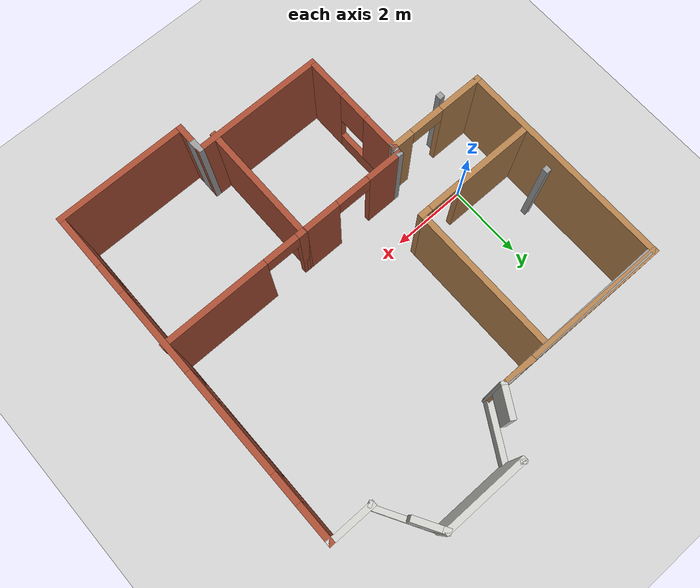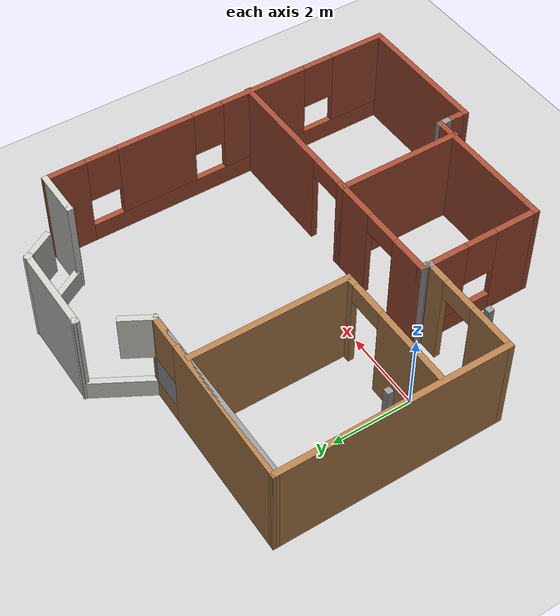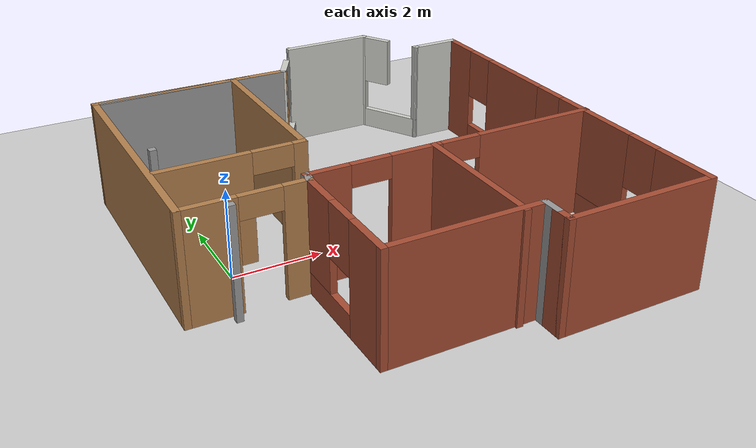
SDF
<sdf version="1.6">
 <world name="default">
  <light name="sun" type="directional">
   <pose>0 0 10 0 -0 0</pose>
   <diffuse>0.8 0.8 0.8 1</diffuse>
   <specular>0.1 0.1 0.1 1</specular>
   <attenuation>
    <range>1000</range>
    <constant>0.9</constant>
    <linear>0.01</linear>
    <quadratic>0.001</quadratic>
   </attenuation>
   <direction>-0.5 0.5 -1</direction>
  </light>
  <model name="ground_plane">
   <static>1</static>
   <link name="link">
    <collision name="collision">
     <geometry><plane><normal>0 0 1</normal><size>100 100</size></plane></geometry>
     <surface><friction><ode><mu>100</mu><mu2>50</mu2></ode></friction></surface>
    </collision>
    <visual name="visual">
     <cast_shadows>0</cast_shadows>
     <geometry><plane><normal>0 0 1</normal><size>100 100</size></plane></geometry>
     <material>
      <script><uri>file://media/materials/scripts/gazebo.material</uri><name>Gazebo/Grey</name></script>
     </material>
    </visual>
   </link>
  </model>
  <gravity>0 0 -9.8</gravity>
  <magnetic_field>6e-06 2.3e-05 -4.2e-05</magnetic_field>
  <atmosphere type="adiabatic"/>
  <physics name="default_physics" default="0" type="ode">
   <max_step_size>0.001</max_step_size>
   <real_time_factor>1</real_time_factor>
   <real_time_update_rate>1000</real_time_update_rate>
  </physics>
  <scene><ambient>0.4 0.4 0.4 1</ambient><background>0.7 0.7 0.7 1</background><shadows>1</shadows></scene>
  <spherical_coordinates>
   <surface_model>EARTH_WGS84</surface_model>
   <latitude_deg>0</latitude_deg>
   <longitude_deg>0</longitude_deg>
   <elevation>0</elevation>
   <heading_deg>0</heading_deg>
  </spherical_coordinates>
  <model name="map">
   <pose>3.29286 0.467569 0 0 -0 0</pose>
   <link name="Wall_16">
    <collision name="Wall_16_Collision">
     <geometry><box><size>0.15 0.15 2.5</size></box></geometry>
     <pose>0 0 1.25 0 -0 0</pose>
    </collision>
    <visual name="Wall_16_Visual">
     <pose>0 0 1.25 0 -0 0</pose>
     <geometry><box><size>0.15 0.15 2.5</size></box></geometry>
     <material>
      <script><uri>file://media/materials/scripts/gazebo.material</uri><name>Gazebo/Grey</name></script>
      <ambient>1 1 1 1</ambient>
     </material>
    </visual>
    <pose>-3.71682 -1.95121 0 0 -0 0</pose>
   </link>
   <link name="Wall_28">
    <collision name="Wall_28_Collision">
     <geometry><box><size>0.15 0.15 2.5</size></box></geometry>
     <pose>0 0 1.25 0 -0 0</pose>
    </collision>
    <visual name="Wall_28_Visual">
     <pose>0 0 1.25 0 -0 0</pose>
     <geometry><box><size>0.15 0.15 2.5</size></box></geometry>
     <material>
      <script><uri>file://media/materials/scripts/gazebo.material</uri><name>Gazebo/Grey</name></script>
      <ambient>1 1 1 1</ambient>
     </material>
    </visual>
    <pose>-4.25919 0.980729 0 0 -0 0</pose>
   </link>
   <link name="Wall_32">
    <collision name="Wall_32_Collision">
     <geometry><box><size>4.5 0.15 2.5</size></box></geometry>
     <pose>0 0 1.25 0 -0 0</pose>
    </collision>
    <visual name="Wall_32_Visual">
     <pose>0 0 1.25 0 -0 0</pose>
     <geometry><box><size>4.5 0.15 2.5</size></box></geometry>
     <material>
      <script><uri>file://media/materials/scripts/gazebo.material</uri><name>Gazebo/Grey</name></script>
      <ambient>1 1 1 1</ambient>
     </material>
    </visual>
    <pose>-2.33753 3.84345 0 0 -0 0</pose>
   </link>
   <link name="Wall_33">
    <pose>0.237473 4.53627 0 0 -0 1.0472</pose>
    <visual name="Wall_33_Visual_0">
     <pose>-0.830927 0 1.25 0 -0 0</pose>
     <geometry><box><size>0.088146 0.15 2.5</size></box></geometry>
     <material>
      <script><uri>file://media/materials/scripts/gazebo.material</uri><name>Gazebo/CeilingTiled</name></script>
      <ambient>1 1 1 1</ambient>
     </material>
    </visual>
    <collision name="Wall_33_Collision_0">
     <geometry><box><size>0.088146 0.15 2.5</size></box></geometry>
     <pose>-0.830927 0 1.25 0 -0 0</pose>
    </collision>
    <visual name="Wall_33_Visual_1">
     <pose>0.044073 0 0.25 0 -0 0</pose>
     <geometry><box><size>1.66185 0.15 0.5</size></box></geometry>
     <material>
      <script><uri>file://media/materials/scripts/gazebo.material</uri><name>Gazebo/CeilingTiled</name></script>
      <ambient>1 1 1 1</ambient>
     </material>
    </visual>
    <collision name="Wall_33_Collision_1">
     <geometry><box><size>1.66185 0.15 0.5</size></box></geometry>
     <pose>0.044073 0 0.25 0 -0 0</pose>
    </collision>
    <visual name="Wall_33_Visual_2">
     <pose>0.822657 0 1.5 0 -0 0</pose>
     <geometry><box><size>0.104687 0.15 2</size></box></geometry>
     <material>
      <script><uri>file://media/materials/scripts/gazebo.material</uri><name>Gazebo/CeilingTiled</name></script>
      <ambient>1 1 1 1</ambient>
     </material>
    </visual>
    <collision name="Wall_33_Collision_2">
     <geometry><box><size>0.104687 0.15 2</size></box></geometry>
     <pose>0.822657 0 1.5 0 -0 0</pose>
    </collision>
    <visual name="Wall_33_Visual_3">
     <pose>-0.408271 0 1.9 0 -0 0</pose>
     <geometry><box><size>0.757168 0.15 1.2</size></box></geometry>
     <material>
      <script><uri>file://media/materials/scripts/gazebo.material</uri><name>Gazebo/CeilingTiled</name></script>
      <ambient>1 1 1 1</ambient>
     </material>
    </visual>
    <collision name="Wall_33_Collision_3">
     <geometry><box><size>0.757168 0.15 1.2</size></box></geometry>
     <pose>-0.408271 0 1.9 0 -0 0</pose>
    </collision>
   </link>
   <link name="Wall_34">
    <collision name="Wall_34_Collision">
     <geometry><box><size>2.25 0.15 2.5</size></box></geometry>
     <pose>0 0 1.25 0 -0 0</pose>
    </collision>
    <visual name="Wall_34_Visual">
     <pose>0 0 1.25 0 -0 0</pose>
     <geometry><box><size>2.25 0.15 2.5</size></box></geometry>
     <material>
      <script><uri>file://media/materials/scripts/gazebo.material</uri><name>Gazebo/CeilingTiled</name></script>
      <ambient>1 1 1 1</ambient>
     </material>
    </visual>
    <pose>1.68747 5.2291 0 0 -0 0</pose>
   </link>
   <link name="Wall_35">
    <pose>3.13747 4.53627 0 0 0 -1.0472</pose>
    <visual name="Wall_35_Visual_0">
     <pose>-0.786697 0 1.25 0 -0 0</pose>
     <geometry><box><size>0.176605 0.15 2.5</size></box></geometry>
     <material>
      <script><uri>file://media/materials/scripts/gazebo.material</uri><name>Gazebo/CeilingTiled</name></script>
      <ambient>1 1 1 1</ambient>
     </material>
    </visual>
    <collision name="Wall_35_Collision_0">
     <geometry><box><size>0.176605 0.15 2.5</size></box></geometry>
     <pose>-0.786697 0 1.25 0 -0 0</pose>
    </collision>
    <visual name="Wall_35_Visual_1">
     <pose>0.088303 0 0.25 0 -0 0</pose>
     <geometry><box><size>1.5734 0.15 0.5</size></box></geometry>
     <material>
      <script><uri>file://media/materials/scripts/gazebo.material</uri><name>Gazebo/CeilingTiled</name></script>
      <ambient>1 1 1 1</ambient>
     </material>
    </visual>
    <collision name="Wall_35_Collision_1">
     <geometry><box><size>1.5734 0.15 0.5</size></box></geometry>
     <pose>0.088303 0 0.25 0 -0 0</pose>
    </collision>
    <visual name="Wall_35_Visual_2">
     <pose>0.832035 0 1.5 0 -0 0</pose>
     <geometry><box><size>0.085931 0.15 2</size></box></geometry>
     <material>
      <script><uri>file://media/materials/scripts/gazebo.material</uri><name>Gazebo/CeilingTiled</name></script>
      <ambient>1 1 1 1</ambient>
     </material>
    </visual>
    <collision name="Wall_35_Collision_2">
     <geometry><box><size>0.085931 0.15 2</size></box></geometry>
     <pose>0.832035 0 1.5 0 -0 0</pose>
    </collision>
    <visual name="Wall_35_Visual_3">
     <pose>-0.354663 0 1.9 0 -0 0</pose>
     <geometry><box><size>0.687464 0.15 1.2</size></box></geometry>
     <material>
      <script><uri>file://media/materials/scripts/gazebo.material</uri><name>Gazebo/CeilingTiled</name></script>
      <ambient>1 1 1 1</ambient>
     </material>
    </visual>
    <collision name="Wall_35_Collision_3">
     <geometry><box><size>0.687464 0.15 1.2</size></box></geometry>
     <pose>-0.354663 0 1.9 0 -0 0</pose>
    </collision>
   </link>
   <link name="Wall_36">
    <collision name="Wall_36_Collision">
     <geometry><box><size>1.25 0.15 2.5</size></box></geometry>
     <pose>0 0 1.25 0 -0 0</pose>
    </collision>
    <visual name="Wall_36_Visual">
     <pose>0 0 1.25 0 -0 0</pose>
     <geometry><box><size>1.25 0.15 2.5</size></box></geometry>
     <material>
      <script><uri>file://media/materials/scripts/gazebo.material</uri><name>Gazebo/CeilingTiled</name></script>
      <ambient>1 1 1 1</ambient>
     </material>
    </visual>
    <pose>4.08747 3.84345 0 0 -0 0</pose>
   </link>
   <link name="Wall_37">
    <pose>4.63747 -0.706546 0 0 0 -1.5708</pose>
    <visual name="Wall_37_Visual_0">
     <pose>-4.09363 0 1.25 0 -0 0</pose>
     <geometry><box><size>1.06275 0.15 2.5</size></box></geometry>
     <material>
      <script><uri>file://media/materials/scripts/gazebo.material</uri><name>Gazebo/Bricks</name></script>
      <ambient>1 1 1 1</ambient>
     </material>
    </visual>
    <collision name="Wall_37_Collision_0">
     <geometry><box><size>1.06275 0.15 2.5</size></box></geometry>
     <pose>-4.09363 0 1.25 0 -0 0</pose>
    </collision>
    <visual name="Wall_37_Visual_1">
     <pose>0.531375 0 0.25 0 -0 0</pose>
     <geometry><box><size>8.18725 0.15 0.5</size></box></geometry>
     <material>
      <script><uri>file://media/materials/scripts/gazebo.material</uri><name>Gazebo/Bricks</name></script>
      <ambient>1 1 1 1</ambient>
     </material>
    </visual>
    <collision name="Wall_37_Collision_1">
     <geometry><box><size>8.18725 0.15 0.5</size></box></geometry>
     <pose>0.531375 0 0.25 0 -0 0</pose>
    </collision>
    <visual name="Wall_37_Visual_2">
     <pose>-1.76706 0 1.5 0 -0 0</pose>
     <geometry><box><size>1.99038 0.15 2</size></box></geometry>
     <material>
      <script><uri>file://media/materials/scripts/gazebo.material</uri><name>Gazebo/Bricks</name></script>
      <ambient>1 1 1 1</ambient>
     </material>
    </visual>
    <collision name="Wall_37_Collision_2">
     <geometry><box><size>1.99038 0.15 2</size></box></geometry>
     <pose>-1.76706 0 1.5 0 -0 0</pose>
    </collision>
    <visual name="Wall_37_Visual_3">
     <pose>1.17552 0 1.5 0 -0 0</pose>
     <geometry><box><size>2.29479 0.15 2</size></box></geometry>
     <material>
      <script><uri>file://media/materials/scripts/gazebo.material</uri><name>Gazebo/Bricks</name></script>
      <ambient>1 1 1 1</ambient>
     </material>
    </visual>
    <collision name="Wall_37_Collision_3">
     <geometry><box><size>2.29479 0.15 2</size></box></geometry>
     <pose>1.17552 0 1.5 0 -0 0</pose>
    </collision>
    <visual name="Wall_37_Visual_4">
     <pose>3.87396 0 1.5 0 -0 0</pose>
     <geometry><box><size>1.50208 0.15 2</size></box></geometry>
     <material>
      <script><uri>file://media/materials/scripts/gazebo.material</uri><name>Gazebo/Bricks</name></script>
      <ambient>1 1 1 1</ambient>
     </material>
    </visual>
    <collision name="Wall_37_Collision_4">
     <geometry><box><size>1.50208 0.15 2</size></box></geometry>
     <pose>3.87396 0 1.5 0 -0 0</pose>
    </collision>
    <visual name="Wall_37_Visual_5">
     <pose>-3.16225 0 1.9 0 -0 0</pose>
     <geometry><box><size>0.8 0.15 1.2</size></box></geometry>
     <material>
      <script><uri>file://media/materials/scripts/gazebo.material</uri><name>Gazebo/Bricks</name></script>
      <ambient>1 1 1 1</ambient>
     </material>
    </visual>
    <collision name="Wall_37_Collision_5">
     <geometry><box><size>0.8 0.15 1.2</size></box></geometry>
     <pose>-3.16225 0 1.9 0 -0 0</pose>
    </collision>
    <visual name="Wall_37_Visual_6">
     <pose>-0.371869 0 1.9 0 -0 0</pose>
     <geometry><box><size>0.8 0.15 1.2</size></box></geometry>
     <material>
      <script><uri>file://media/materials/scripts/gazebo.material</uri><name>Gazebo/Bricks</name></script>
      <ambient>1 1 1 1</ambient>
     </material>
    </visual>
    <collision name="Wall_37_Collision_6">
     <geometry><box><size>0.8 0.15 1.2</size></box></geometry>
     <pose>-0.371869 0 1.9 0 -0 0</pose>
    </collision>
    <visual name="Wall_37_Visual_7">
     <pose>2.72292 0 1.9 0 -0 0</pose>
     <geometry><box><size>0.8 0.15 1.2</size></box></geometry>
     <material>
      <script><uri>file://media/materials/scripts/gazebo.material</uri><name>Gazebo/Bricks</name></script>
      <ambient>1 1 1 1</ambient>
     </material>
    </visual>
    <collision name="Wall_37_Collision_7">
     <geometry><box><size>0.8 0.15 1.2</size></box></geometry>
     <pose>2.72292 0 1.9 0 -0 0</pose>
    </collision>
   </link>
   <link name="Wall_38">
    <collision name="Wall_38_Collision">
     <geometry><box><size>3.5 0.15 2.5</size></box></geometry>
     <pose>0 0 1.25 0 -0 0</pose>
    </collision>
    <visual name="Wall_38_Visual">
     <pose>0 0 1.25 0 -0 0</pose>
     <geometry><box><size>3.5 0.15 2.5</size></box></geometry>
     <material>
      <script><uri>file://media/materials/scripts/gazebo.material</uri><name>Gazebo/Bricks</name></script>
      <ambient>1 1 1 1</ambient>
     </material>
    </visual>
    <pose>2.96247 -5.25655 0 0 -0 3.14159</pose>
   </link>
   <link name="Wall_39">
    <collision name="Wall_39_Collision">
     <geometry><box><size>0.5 0.15 2.5</size></box></geometry>
     <pose>0 0 1.25 0 -0 0</pose>
    </collision>
    <visual name="Wall_39_Visual">
     <pose>0 0 1.25 0 -0 0</pose>
     <geometry><box><size>0.5 0.15 2.5</size></box></geometry>
     <material>
      <script><uri>file://media/materials/scripts/gazebo.material</uri><name>Gazebo/Bricks</name></script>
      <ambient>1 1 1 1</ambient>
     </material>
    </visual>
    <pose>1.28747 -5.08155 0 0 -0 1.5708</pose>
   </link>
   <link name="Wall_40">
    <collision name="Wall_40_Collision">
     <geometry><box><size>0.5 0.15 2.5</size></box></geometry>
     <pose>0 0 1.25 0 -0 0</pose>
    </collision>
    <visual name="Wall_40_Visual">
     <pose>0 0 1.25 0 -0 0</pose>
     <geometry><box><size>0.5 0.15 2.5</size></box></geometry>
     <material>
      <script><uri>file://media/materials/scripts/gazebo.material</uri><name>Gazebo/Grey</name></script>
      <ambient>1 1 1 1</ambient>
     </material>
    </visual>
    <pose>1.28747 -4.73155 0 0 -0 1.5708</pose>
   </link>
   <link name="Wall_41">
    <collision name="Wall_41_Collision">
     <geometry><box><size>3.5 0.15 2.5</size></box></geometry>
     <pose>0 0 1.25 0 -0 0</pose>
    </collision>
    <visual name="Wall_41_Visual">
     <pose>0 0 1.25 0 -0 0</pose>
     <geometry><box><size>3.5 0.15 2.5</size></box></geometry>
     <material>
      <script><uri>file://media/materials/scripts/gazebo.material</uri><name>Gazebo/Bricks</name></script>
      <ambient>1 1 1 1</ambient>
     </material>
    </visual>
    <pose>-0.387527 -4.55655 0 0 -0 3.14159</pose>
   </link>
   <link name="Wall_42">
    <pose>-2.06253 -3.13155 0 0 -0 1.5708</pose>
    <visual name="Wall_42_Visual_0">
     <pose>-0.921389 0 1.25 0 -0 0</pose>
     <geometry><box><size>1.15722 0.15 2.5</size></box></geometry>
     <material>
      <script><uri>file://media/materials/scripts/gazebo.material</uri><name>Gazebo/Bricks</name></script>
      <ambient>1 1 1 1</ambient>
     </material>
    </visual>
    <collision name="Wall_42_Collision_0">
     <geometry><box><size>1.15722 0.15 2.5</size></box></geometry>
     <pose>-0.921389 0 1.25 0 -0 0</pose>
    </collision>
    <visual name="Wall_42_Visual_1">
     <pose>0.578611 0 0.25 0 -0 0</pose>
     <geometry><box><size>1.84278 0.15 0.5</size></box></geometry>
     <material>
      <script><uri>file://media/materials/scripts/gazebo.material</uri><name>Gazebo/Bricks</name></script>
      <ambient>1 1 1 1</ambient>
     </material>
    </visual>
    <collision name="Wall_42_Collision_1">
     <geometry><box><size>1.84278 0.15 0.5</size></box></geometry>
     <pose>0.578611 0 0.25 0 -0 0</pose>
    </collision>
    <visual name="Wall_42_Visual_2">
     <pose>0.978611 0 1.5 0 -0 0</pose>
     <geometry><box><size>1.04278 0.15 2</size></box></geometry>
     <material>
      <script><uri>file://media/materials/scripts/gazebo.material</uri><name>Gazebo/Bricks</name></script>
      <ambient>1 1 1 1</ambient>
     </material>
    </visual>
    <collision name="Wall_42_Collision_2">
     <geometry><box><size>1.04278 0.15 2</size></box></geometry>
     <pose>0.978611 0 1.5 0 -0 0</pose>
    </collision>
    <visual name="Wall_42_Visual_3">
     <pose>0.057223 0 1.9 0 -0 0</pose>
     <geometry><box><size>0.8 0.15 1.2</size></box></geometry>
     <material>
      <script><uri>file://media/materials/scripts/gazebo.material</uri><name>Gazebo/Bricks</name></script>
      <ambient>1 1 1 1</ambient>
     </material>
    </visual>
    <collision name="Wall_42_Collision_3">
     <geometry><box><size>0.8 0.15 1.2</size></box></geometry>
     <pose>0.057223 0 1.9 0 -0 0</pose>
    </collision>
   </link>
   <link name="Wall_43">
    <pose>-3.36253 -1.70655 0 0 -0 3.14159</pose>
    <visual name="Wall_43_Visual_0">
     <pose>-1.06257 0 1.25 0 -0 0</pose>
     <geometry><box><size>0.624852 0.15 2.5</size></box></geometry>
     <material>
      <script><uri>file://media/materials/scripts/gazebo.material</uri><name>Gazebo/Wood</name></script>
      <ambient>1 1 1 1</ambient>
     </material>
    </visual>
    <collision name="Wall_43_Collision_0">
     <geometry><box><size>0.624852 0.15 2.5</size></box></geometry>
     <pose>-1.06257 0 1.25 0 -0 0</pose>
    </collision>
    <visual name="Wall_43_Visual_1">
     <pose>0.762426 0 1.25 0 -0 0</pose>
     <geometry><box><size>1.22515 0.15 2.5</size></box></geometry>
     <material>
      <script><uri>file://media/materials/scripts/gazebo.material</uri><name>Gazebo/Wood</name></script>
      <ambient>1 1 1 1</ambient>
     </material>
    </visual>
    <collision name="Wall_43_Collision_1">
     <geometry><box><size>1.22515 0.15 2.5</size></box></geometry>
     <pose>0.762426 0 1.25 0 -0 0</pose>
    </collision>
    <visual name="Wall_43_Visual_2">
     <pose>-0.300148 0 2.25 0 -0 0</pose>
     <geometry><box><size>0.9 0.15 0.5</size></box></geometry>
     <material>
      <script><uri>file://media/materials/scripts/gazebo.material</uri><name>Gazebo/Wood</name></script>
      <ambient>1 1 1 1</ambient>
     </material>
    </visual>
    <collision name="Wall_43_Collision_2">
     <geometry><box><size>0.9 0.15 0.5</size></box></geometry>
     <pose>-0.300148 0 2.25 0 -0 0</pose>
    </collision>
   </link>
   <link name="Wall_44">
    <collision name="Wall_44_Collision">
     <geometry><box><size>5.75 0.15 2.5</size></box></geometry>
     <pose>0 0 1.25 0 -0 0</pose>
    </collision>
    <visual name="Wall_44_Visual">
     <pose>0 0 1.25 0 -0 0</pose>
     <geometry><box><size>5.75 0.15 2.5</size></box></geometry>
     <material>
      <script><uri>file://media/materials/scripts/gazebo.material</uri><name>Gazebo/Wood</name></script>
      <ambient>1 1 1 1</ambient>
     </material>
    </visual>
    <pose>-4.66253 1.09345 0 0 -0 1.5708</pose>
   </link>
   <link name="Wall_45">
    <pose>-2.41253 3.86845 0 0 0 -0.011111</pose>
    <visual name="Wall_45_Visual_0">
     <pose>-0.470303 0 1.25 0 -0 0</pose>
     <geometry><box><size>3.70967 0.15 2.5</size></box></geometry>
     <material>
      <script><uri>file://media/materials/scripts/gazebo.material</uri><name>Gazebo/Wood</name></script>
      <ambient>1 1 1 1</ambient>
     </material>
    </visual>
    <collision name="Wall_45_Collision_0">
     <geometry><box><size>3.70967 0.15 2.5</size></box></geometry>
     <pose>-0.470303 0 1.25 0 -0 0</pose>
    </collision>
    <visual name="Wall_45_Visual_1">
     <pose>1.85484 0 0.25 0 -0 0</pose>
     <geometry><box><size>0.940606 0.15 0.5</size></box></geometry>
     <material>
      <script><uri>file://media/materials/scripts/gazebo.material</uri><name>Gazebo/Wood</name></script>
      <ambient>1 1 1 1</ambient>
     </material>
    </visual>
    <collision name="Wall_45_Collision_1">
     <geometry><box><size>0.940606 0.15 0.5</size></box></geometry>
     <pose>1.85484 0 0.25 0 -0 0</pose>
    </collision>
    <visual name="Wall_45_Visual_2">
     <pose>2.25484 0 1.5 0 -0 0</pose>
     <geometry><box><size>0.140606 0.15 2</size></box></geometry>
     <material>
      <script><uri>file://media/materials/scripts/gazebo.material</uri><name>Gazebo/Wood</name></script>
      <ambient>1 1 1 1</ambient>
     </material>
    </visual>
    <collision name="Wall_45_Collision_2">
     <geometry><box><size>0.140606 0.15 2</size></box></geometry>
     <pose>2.25484 0 1.5 0 -0 0</pose>
    </collision>
    <visual name="Wall_45_Visual_3">
     <pose>1.78453 0 1.9 0 -0 0</pose>
     <geometry><box><size>0.8 0.15 1.2</size></box></geometry>
     <material>
      <script><uri>file://media/materials/scripts/gazebo.material</uri><name>Gazebo/Wood</name></script>
      <ambient>1 1 1 1</ambient>
     </material>
    </visual>
    <collision name="Wall_45_Collision_3">
     <geometry><box><size>0.8 0.15 1.2</size></box></geometry>
     <pose>1.78453 0 1.9 0 -0 0</pose>
    </collision>
   </link>
   <link name="Wall_47">
    <collision name="Wall_47_Collision">
     <geometry><box><size>4 0.15 2.5</size></box></geometry>
     <pose>0 0 1.25 0 -0 0</pose>
    </collision>
    <visual name="Wall_47_Visual">
     <pose>0 0 1.25 0 -0 0</pose>
     <geometry><box><size>4 0.15 2.5</size></box></geometry>
     <material>
      <script><uri>file://media/materials/scripts/gazebo.material</uri><name>Gazebo/Wood</name></script>
      <ambient>1 1 1 1</ambient>
     </material>
    </visual>
    <pose>-1.43349 1.85773 0 0 0 -1.5708</pose>
   </link>
   <link name="Wall_48">
    <pose>-2.98349 -0.067271 0 0 -0 3.14159</pose>
    <visual name="Wall_48_Visual_0">
     <pose>-1.46734 0 1.25 0 -0 0</pose>
     <geometry><box><size>0.31531 0.15 2.5</size></box></geometry>
     <material>
      <script><uri>file://media/materials/scripts/gazebo.material</uri><name>Gazebo/Wood</name></script>
      <ambient>1 1 1 1</ambient>
     </material>
    </visual>
    <collision name="Wall_48_Collision_0">
     <geometry><box><size>0.31531 0.15 2.5</size></box></geometry>
     <pose>-1.46734 0 1.25 0 -0 0</pose>
    </collision>
    <visual name="Wall_48_Visual_1">
     <pose>0.607655 0 1.25 0 -0 0</pose>
     <geometry><box><size>2.03469 0.15 2.5</size></box></geometry>
     <material>
      <script><uri>file://media/materials/scripts/gazebo.material</uri><name>Gazebo/Wood</name></script>
      <ambient>1 1 1 1</ambient>
     </material>
    </visual>
    <collision name="Wall_48_Collision_1">
     <geometry><box><size>2.03469 0.15 2.5</size></box></geometry>
     <pose>0.607655 0 1.25 0 -0 0</pose>
    </collision>
    <visual name="Wall_48_Visual_2">
     <pose>-0.85969 0 2.25 0 -0 0</pose>
     <geometry><box><size>0.9 0.15 0.5</size></box></geometry>
     <material>
      <script><uri>file://media/materials/scripts/gazebo.material</uri><name>Gazebo/Wood</name></script>
      <ambient>1 1 1 1</ambient>
     </material>
    </visual>
    <collision name="Wall_48_Collision_2">
     <geometry><box><size>0.9 0.15 0.5</size></box></geometry>
     <pose>-0.85969 0 2.25 0 -0 0</pose>
    </collision>
   </link>
   <link name="Wall_50">
    <collision name="Wall_50_Collision">
     <geometry><box><size>0.25 0.15 2.5</size></box></geometry>
     <pose>0 0 1.25 0 -0 0</pose>
    </collision>
    <visual name="Wall_50_Visual">
     <pose>0 0 1.25 0 -0 0</pose>
     <geometry><box><size>0.25 0.15 2.5</size></box></geometry>
     <material>
      <script><uri>file://media/materials/scripts/gazebo.material</uri><name>Gazebo/Grey</name></script>
      <ambient>1 1 1 1</ambient>
     </material>
    </visual>
    <pose>-2.04959 -1.65825 0 0 -0 1.309</pose>
   </link>
   <link name="Wall_51">
    <collision name="Wall_51_Collision">
     <geometry><box><size>0.25 0.15 2.5</size></box></geometry>
     <pose>0 0 1.25 0 -0 0</pose>
    </collision>
    <visual name="Wall_51_Visual">
     <pose>0 0 1.25 0 -0 0</pose>
     <geometry><box><size>0.25 0.15 2.5</size></box></geometry>
     <material>
      <script><uri>file://media/materials/scripts/gazebo.material</uri><name>Gazebo/Grey</name></script>
      <ambient>1 1 1 1</ambient>
     </material>
    </visual>
    <pose>-2.03665 -1.55995 0 0 -0 1.5708</pose>
   </link>
   <link name="Wall_52">
    <pose>-0.611645 -1.50995 0 0 -0 0</pose>
    <visual name="Wall_52_Visual_0">
     <pose>-0.99543 0 1.25 0 -0 0</pose>
     <geometry><box><size>1.00914 0.15 2.5</size></box></geometry>
     <material>
      <script><uri>file://media/materials/scripts/gazebo.material</uri><name>Gazebo/Bricks</name></script>
      <ambient>1 1 1 1</ambient>
     </material>
    </visual>
    <collision name="Wall_52_Collision_0">
     <geometry><box><size>1.00914 0.15 2.5</size></box></geometry>
     <pose>-0.99543 0 1.25 0 -0 0</pose>
    </collision>
    <visual name="Wall_52_Visual_1">
     <pose>0.95457 0 1.25 0 -0 0</pose>
     <geometry><box><size>1.09086 0.15 2.5</size></box></geometry>
     <material>
      <script><uri>file://media/materials/scripts/gazebo.material</uri><name>Gazebo/Bricks</name></script>
      <ambient>1 1 1 1</ambient>
     </material>
    </visual>
    <collision name="Wall_52_Collision_1">
     <geometry><box><size>1.09086 0.15 2.5</size></box></geometry>
     <pose>0.95457 0 1.25 0 -0 0</pose>
    </collision>
    <visual name="Wall_52_Visual_2">
     <pose>-0.04086 0 2.25 0 -0 0</pose>
     <geometry><box><size>0.9 0.15 0.5</size></box></geometry>
     <material>
      <script><uri>file://media/materials/scripts/gazebo.material</uri><name>Gazebo/Bricks</name></script>
      <ambient>1 1 1 1</ambient>
     </material>
    </visual>
    <collision name="Wall_52_Collision_2">
     <geometry><box><size>0.9 0.15 0.5</size></box></geometry>
     <pose>-0.04086 0 2.25 0 -0 0</pose>
    </collision>
   </link>
   <link name="Wall_56">
    <collision name="Wall_56_Collision">
     <geometry><box><size>3.25 0.15 2.5</size></box></geometry>
     <pose>0 0 1.25 0 -0 0</pose>
    </collision>
    <visual name="Wall_56_Visual">
     <pose>0 0 1.25 0 -0 0</pose>
     <geometry><box><size>3.25 0.15 2.5</size></box></geometry>
     <material>
      <script><uri>file://media/materials/scripts/gazebo.material</uri><name>Gazebo/Bricks</name></script>
      <ambient>1 1 1 1</ambient>
     </material>
    </visual>
    <pose>0.813355 -3.05995 0 0 0 -1.5708</pose>
   </link>
   <link name="Wall_58">
    <pose>2.73835 -1.50995 0 0 -0 0</pose>
    <visual name="Wall_58_Visual_0">
     <pose>-1.88038 0 1.25 0 -0 0</pose>
     <geometry><box><size>0.239242 0.15 2.5</size></box></geometry>
     <material>
      <script><uri>file://media/materials/scripts/gazebo.material</uri><name>Gazebo/Bricks</name></script>
      <ambient>1 1 1 1</ambient>
     </material>
    </visual>
    <collision name="Wall_58_Collision_0">
     <geometry><box><size>0.239242 0.15 2.5</size></box></geometry>
     <pose>-1.88038 0 1.25 0 -0 0</pose>
    </collision>
    <visual name="Wall_58_Visual_1">
     <pose>0.569621 0 1.25 0 -0 0</pose>
     <geometry><box><size>2.86076 0.15 2.5</size></box></geometry>
     <material>
      <script><uri>file://media/materials/scripts/gazebo.material</uri><name>Gazebo/Bricks</name></script>
      <ambient>1 1 1 1</ambient>
     </material>
    </visual>
    <collision name="Wall_58_Collision_1">
     <geometry><box><size>2.86076 0.15 2.5</size></box></geometry>
     <pose>0.569621 0 1.25 0 -0 0</pose>
    </collision>
    <visual name="Wall_58_Visual_2">
     <pose>-1.31076 0 2.25 0 -0 0</pose>
     <geometry><box><size>0.9 0.15 0.5</size></box></geometry>
     <material>
      <script><uri>file://media/materials/scripts/gazebo.material</uri><name>Gazebo/Bricks</name></script>
      <ambient>1 1 1 1</ambient>
     </material>
    </visual>
    <collision name="Wall_58_Collision_2">
     <geometry><box><size>0.9 0.15 0.5</size></box></geometry>
     <pose>-1.31076 0 2.25 0 -0 0</pose>
    </collision>
   </link>
   <static>1</static>
  </model>
 </world>
</sdf>
